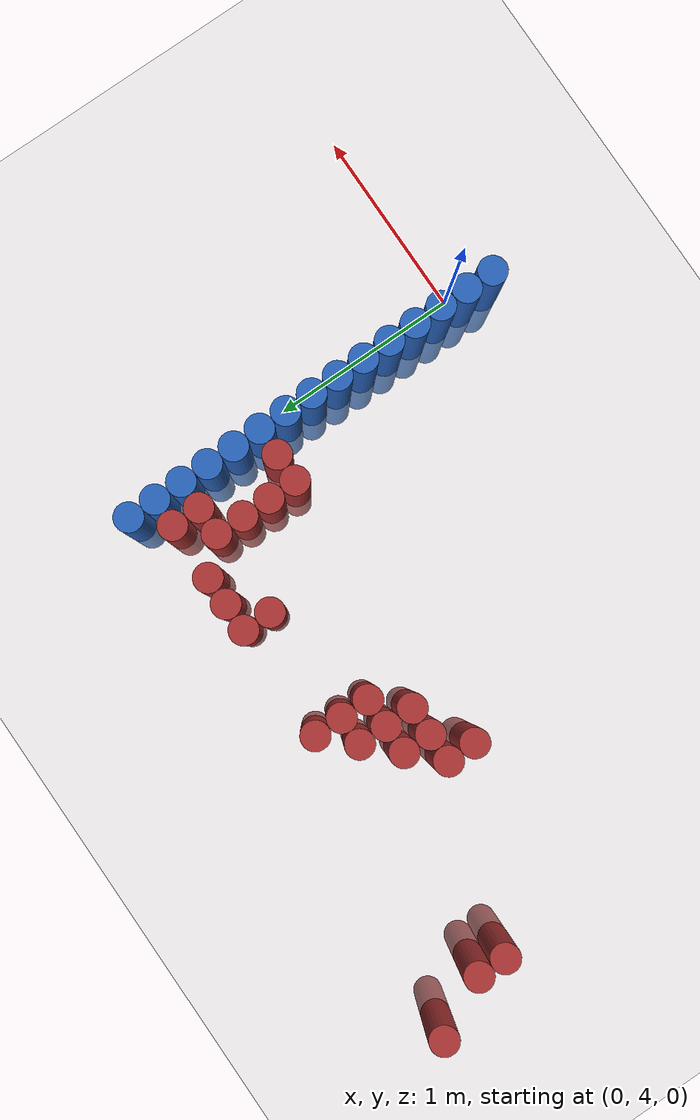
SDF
<sdf version="1.6">
 <world name="default">
  <model name="ground_plane">
   <static>1</static>
   <link name="link">
    <collision name="collision">
     <geometry><plane><normal>0 0 1</normal><size>100 100</size></plane></geometry>
     <surface><friction><ode><mu>100</mu><mu2>50</mu2></ode></friction></surface>
    </collision>
    <visual name="visual">
     <cast_shadows>0</cast_shadows>
     <geometry><plane><normal>0 0 1</normal><size>100 100</size></plane></geometry>
     <material>
      <script><uri>file://media/materials/scripts/gazebo.material</uri><name>Gazebo/Grey</name></script>
     </material>
    </visual>
   </link>
  </model>
  <model name="unit_cylinder_78">
   <static>1</static>
   <pose>-0.075000 3.825000 0.000000 0.000000 0.000000 0.000000</pose>
   <link name="link">
    <inertial>
     <mass>1</mass>
     <inertia><ixx>0.145833</ixx><ixy>0</ixy><ixz>0</ixz><iyy>0.145833</iyy><iyz>0</iyz><izz>0.125</izz></inertia>
    </inertial>
    <collision name="collision">
     <geometry><cylinder><radius>0.075000</radius><length>1</length></cylinder></geometry>
    </collision>
    <visual name="visual">
     <geometry><cylinder><radius>0.075000</radius><length>1</length></cylinder></geometry>
     <material>
      <ambient>0.152000 0.379000 0.720000 1</ambient>
      <diffuse>0.152000 0.379000 0.720000 1</diffuse>
     </material>
     <material>
      <script><name>Gazebo/Grey</name><uri>file://media/materials/scripts/gazebo.material</uri></script>
     </material>
    </visual>
    <sensor name="sensor_contact" type="contact"><contact><collision>collision</collision></contact></sensor>
   </link>
   <plugin filename="gz-sim-touchplugin-system" name="gz::sim::systems::TouchPlugin">
    <target>robot</target>
    <namespace>robot</namespace>
    <time>0.001</time>
    <enabled>true</enabled>
   </plugin>
  </model>
  <model name="unit_cylinder_80">
   <static>1</static>
   <pose>-0.075000 3.975000 0.000000 0.000000 0.000000 0.000000</pose>
   <link name="link">
    <inertial>
     <mass>1</mass>
     <inertia><ixx>0.145833</ixx><ixy>0</ixy><ixz>0</ixz><iyy>0.145833</iyy><iyz>0</iyz><izz>0.125</izz></inertia>
    </inertial>
    <collision name="collision">
     <geometry><cylinder><radius>0.075000</radius><length>1</length></cylinder></geometry>
    </collision>
    <visual name="visual">
     <geometry><cylinder><radius>0.075000</radius><length>1</length></cylinder></geometry>
     <material>
      <ambient>0.152000 0.379000 0.720000 1</ambient>
      <diffuse>0.152000 0.379000 0.720000 1</diffuse>
     </material>
     <material>
      <script><name>Gazebo/Grey</name><uri>file://media/materials/scripts/gazebo.material</uri></script>
     </material>
    </visual>
    <sensor name="sensor_contact" type="contact"><contact><collision>collision</collision></contact></sensor>
   </link>
   <plugin filename="gz-sim-touchplugin-system" name="gz::sim::systems::TouchPlugin">
    <target>robot</target>
    <namespace>robot</namespace>
    <time>0.001</time>
    <enabled>true</enabled>
   </plugin>
  </model>
  <model name="unit_cylinder_82">
   <static>1</static>
   <pose>-0.075000 4.125000 0.000000 0.000000 0.000000 0.000000</pose>
   <link name="link">
    <inertial>
     <mass>1</mass>
     <inertia><ixx>0.145833</ixx><ixy>0</ixy><ixz>0</ixz><iyy>0.145833</iyy><iyz>0</iyz><izz>0.125</izz></inertia>
    </inertial>
    <collision name="collision">
     <geometry><cylinder><radius>0.075000</radius><length>1</length></cylinder></geometry>
    </collision>
    <visual name="visual">
     <geometry><cylinder><radius>0.075000</radius><length>1</length></cylinder></geometry>
     <material>
      <ambient>0.152000 0.379000 0.720000 1</ambient>
      <diffuse>0.152000 0.379000 0.720000 1</diffuse>
     </material>
     <material>
      <script><name>Gazebo/Grey</name><uri>file://media/materials/scripts/gazebo.material</uri></script>
     </material>
    </visual>
    <sensor name="sensor_contact" type="contact"><contact><collision>collision</collision></contact></sensor>
   </link>
   <plugin filename="gz-sim-touchplugin-system" name="gz::sim::systems::TouchPlugin">
    <target>robot</target>
    <namespace>robot</namespace>
    <time>0.001</time>
    <enabled>true</enabled>
   </plugin>
  </model>
  <model name="unit_cylinder_84">
   <static>1</static>
   <pose>-0.075000 4.275000 0.000000 0.000000 0.000000 0.000000</pose>
   <link name="link">
    <inertial>
     <mass>1</mass>
     <inertia><ixx>0.145833</ixx><ixy>0</ixy><ixz>0</ixz><iyy>0.145833</iyy><iyz>0</iyz><izz>0.125</izz></inertia>
    </inertial>
    <collision name="collision">
     <geometry><cylinder><radius>0.075000</radius><length>1</length></cylinder></geometry>
    </collision>
    <visual name="visual">
     <geometry><cylinder><radius>0.075000</radius><length>1</length></cylinder></geometry>
     <material>
      <ambient>0.152000 0.379000 0.720000 1</ambient>
      <diffuse>0.152000 0.379000 0.720000 1</diffuse>
     </material>
     <material>
      <script><name>Gazebo/Grey</name><uri>file://media/materials/scripts/gazebo.material</uri></script>
     </material>
    </visual>
    <sensor name="sensor_contact" type="contact"><contact><collision>collision</collision></contact></sensor>
   </link>
   <plugin filename="gz-sim-touchplugin-system" name="gz::sim::systems::TouchPlugin">
    <target>robot</target>
    <namespace>robot</namespace>
    <time>0.001</time>
    <enabled>true</enabled>
   </plugin>
  </model>
  <model name="unit_cylinder_86">
   <static>1</static>
   <pose>-0.075000 4.425000 0.000000 0.000000 0.000000 0.000000</pose>
   <link name="link">
    <inertial>
     <mass>1</mass>
     <inertia><ixx>0.145833</ixx><ixy>0</ixy><ixz>0</ixz><iyy>0.145833</iyy><iyz>0</iyz><izz>0.125</izz></inertia>
    </inertial>
    <collision name="collision">
     <geometry><cylinder><radius>0.075000</radius><length>1</length></cylinder></geometry>
    </collision>
    <visual name="visual">
     <geometry><cylinder><radius>0.075000</radius><length>1</length></cylinder></geometry>
     <material>
      <ambient>0.152000 0.379000 0.720000 1</ambient>
      <diffuse>0.152000 0.379000 0.720000 1</diffuse>
     </material>
     <material>
      <script><name>Gazebo/Grey</name><uri>file://media/materials/scripts/gazebo.material</uri></script>
     </material>
    </visual>
    <sensor name="sensor_contact" type="contact"><contact><collision>collision</collision></contact></sensor>
   </link>
   <plugin filename="gz-sim-touchplugin-system" name="gz::sim::systems::TouchPlugin">
    <target>robot</target>
    <namespace>robot</namespace>
    <time>0.001</time>
    <enabled>true</enabled>
   </plugin>
  </model>
  <model name="unit_cylinder_88">
   <static>1</static>
   <pose>-0.075000 4.575000 0.000000 0.000000 0.000000 0.000000</pose>
   <link name="link">
    <inertial>
     <mass>1</mass>
     <inertia><ixx>0.145833</ixx><ixy>0</ixy><ixz>0</ixz><iyy>0.145833</iyy><iyz>0</iyz><izz>0.125</izz></inertia>
    </inertial>
    <collision name="collision">
     <geometry><cylinder><radius>0.075000</radius><length>1</length></cylinder></geometry>
    </collision>
    <visual name="visual">
     <geometry><cylinder><radius>0.075000</radius><length>1</length></cylinder></geometry>
     <material>
      <ambient>0.152000 0.379000 0.720000 1</ambient>
      <diffuse>0.152000 0.379000 0.720000 1</diffuse>
     </material>
     <material>
      <script><name>Gazebo/Grey</name><uri>file://media/materials/scripts/gazebo.material</uri></script>
     </material>
    </visual>
    <sensor name="sensor_contact" type="contact"><contact><collision>collision</collision></contact></sensor>
   </link>
   <plugin filename="gz-sim-touchplugin-system" name="gz::sim::systems::TouchPlugin">
    <target>robot</target>
    <namespace>robot</namespace>
    <time>0.001</time>
    <enabled>true</enabled>
   </plugin>
  </model>
  <model name="unit_cylinder_90">
   <static>1</static>
   <pose>-0.075000 4.725000 0.000000 0.000000 0.000000 0.000000</pose>
   <link name="link">
    <inertial>
     <mass>1</mass>
     <inertia><ixx>0.145833</ixx><ixy>0</ixy><ixz>0</ixz><iyy>0.145833</iyy><iyz>0</iyz><izz>0.125</izz></inertia>
    </inertial>
    <collision name="collision">
     <geometry><cylinder><radius>0.075000</radius><length>1</length></cylinder></geometry>
    </collision>
    <visual name="visual">
     <geometry><cylinder><radius>0.075000</radius><length>1</length></cylinder></geometry>
     <material>
      <ambient>0.152000 0.379000 0.720000 1</ambient>
      <diffuse>0.152000 0.379000 0.720000 1</diffuse>
     </material>
     <material>
      <script><name>Gazebo/Grey</name><uri>file://media/materials/scripts/gazebo.material</uri></script>
     </material>
    </visual>
    <sensor name="sensor_contact" type="contact"><contact><collision>collision</collision></contact></sensor>
   </link>
   <plugin filename="gz-sim-touchplugin-system" name="gz::sim::systems::TouchPlugin">
    <target>robot</target>
    <namespace>robot</namespace>
    <time>0.001</time>
    <enabled>true</enabled>
   </plugin>
  </model>
  <model name="unit_cylinder_92">
   <static>1</static>
   <pose>-0.075000 4.875000 0.000000 0.000000 0.000000 0.000000</pose>
   <link name="link">
    <inertial>
     <mass>1</mass>
     <inertia><ixx>0.145833</ixx><ixy>0</ixy><ixz>0</ixz><iyy>0.145833</iyy><iyz>0</iyz><izz>0.125</izz></inertia>
    </inertial>
    <collision name="collision">
     <geometry><cylinder><radius>0.075000</radius><length>1</length></cylinder></geometry>
    </collision>
    <visual name="visual">
     <geometry><cylinder><radius>0.075000</radius><length>1</length></cylinder></geometry>
     <material>
      <ambient>0.152000 0.379000 0.720000 1</ambient>
      <diffuse>0.152000 0.379000 0.720000 1</diffuse>
     </material>
     <material>
      <script><name>Gazebo/Grey</name><uri>file://media/materials/scripts/gazebo.material</uri></script>
     </material>
    </visual>
    <sensor name="sensor_contact" type="contact"><contact><collision>collision</collision></contact></sensor>
   </link>
   <plugin filename="gz-sim-touchplugin-system" name="gz::sim::systems::TouchPlugin">
    <target>robot</target>
    <namespace>robot</namespace>
    <time>0.001</time>
    <enabled>true</enabled>
   </plugin>
  </model>
  <model name="unit_cylinder_94">
   <static>1</static>
   <pose>-0.075000 5.025000 0.000000 0.000000 0.000000 0.000000</pose>
   <link name="link">
    <inertial>
     <mass>1</mass>
     <inertia><ixx>0.145833</ixx><ixy>0</ixy><ixz>0</ixz><iyy>0.145833</iyy><iyz>0</iyz><izz>0.125</izz></inertia>
    </inertial>
    <collision name="collision">
     <geometry><cylinder><radius>0.075000</radius><length>1</length></cylinder></geometry>
    </collision>
    <visual name="visual">
     <geometry><cylinder><radius>0.075000</radius><length>1</length></cylinder></geometry>
     <material>
      <ambient>0.152000 0.379000 0.720000 1</ambient>
      <diffuse>0.152000 0.379000 0.720000 1</diffuse>
     </material>
     <material>
      <script><name>Gazebo/Grey</name><uri>file://media/materials/scripts/gazebo.material</uri></script>
     </material>
    </visual>
    <sensor name="sensor_contact" type="contact"><contact><collision>collision</collision></contact></sensor>
   </link>
   <plugin filename="gz-sim-touchplugin-system" name="gz::sim::systems::TouchPlugin">
    <target>robot</target>
    <namespace>robot</namespace>
    <time>0.001</time>
    <enabled>true</enabled>
   </plugin>
  </model>
  <model name="unit_cylinder_225">
   <static>1</static>
   <pose>-2.925000 6.075000 0.000000 0.000000 0.000000 0.000000</pose>
   <link name="link">
    <inertial>
     <mass>1</mass>
     <inertia><ixx>0.145833</ixx><ixy>0</ixy><ixz>0</ixz><iyy>0.145833</iyy><iyz>0</iyz><izz>0.125</izz></inertia>
    </inertial>
    <collision name="collision">
     <geometry><cylinder><radius>0.075000</radius><length>1</length></cylinder></geometry>
    </collision>
    <visual name="visual">
     <geometry><cylinder><radius>0.075000</radius><length>1</length></cylinder></geometry>
     <material>
      <ambient>0.648000 0.192000 0.192000 1</ambient>
      <diffuse>0.648000 0.192000 0.192000 1</diffuse>
     </material>
     <material>
      <script><name>Gazebo/Grey</name><uri>file://media/materials/scripts/gazebo.material</uri></script>
     </material>
    </visual>
    <sensor name="sensor_contact" type="contact"><contact><collision>collision</collision></contact></sensor>
   </link>
   <plugin filename="gz-sim-touchplugin-system" name="gz::sim::systems::TouchPlugin">
    <target>robot</target>
    <namespace>robot</namespace>
    <time>0.001</time>
    <enabled>true</enabled>
   </plugin>
  </model>
  <model name="unit_cylinder_232">
   <static>1</static>
   <pose>-2.775000 5.625000 0.000000 0.000000 0.000000 0.000000</pose>
   <link name="link">
    <inertial>
     <mass>1</mass>
     <inertia><ixx>0.145833</ixx><ixy>0</ixy><ixz>0</ixz><iyy>0.145833</iyy><iyz>0</iyz><izz>0.125</izz></inertia>
    </inertial>
    <collision name="collision">
     <geometry><cylinder><radius>0.075000</radius><length>1</length></cylinder></geometry>
    </collision>
    <visual name="visual">
     <geometry><cylinder><radius>0.075000</radius><length>1</length></cylinder></geometry>
     <material>
      <ambient>0.648000 0.192000 0.192000 1</ambient>
      <diffuse>0.648000 0.192000 0.192000 1</diffuse>
     </material>
     <material>
      <script><name>Gazebo/Grey</name><uri>file://media/materials/scripts/gazebo.material</uri></script>
     </material>
    </visual>
    <sensor name="sensor_contact" type="contact"><contact><collision>collision</collision></contact></sensor>
   </link>
   <plugin filename="gz-sim-touchplugin-system" name="gz::sim::systems::TouchPlugin">
    <target>robot</target>
    <namespace>robot</namespace>
    <time>0.001</time>
    <enabled>true</enabled>
   </plugin>
  </model>
  <model name="unit_cylinder_233">
   <static>1</static>
   <pose>-2.775000 5.775000 0.000000 0.000000 0.000000 0.000000</pose>
   <link name="link">
    <inertial>
     <mass>1</mass>
     <inertia><ixx>0.145833</ixx><ixy>0</ixy><ixz>0</ixz><iyy>0.145833</iyy><iyz>0</iyz><izz>0.125</izz></inertia>
    </inertial>
    <collision name="collision">
     <geometry><cylinder><radius>0.075000</radius><length>1</length></cylinder></geometry>
    </collision>
    <visual name="visual">
     <geometry><cylinder><radius>0.075000</radius><length>1</length></cylinder></geometry>
     <material>
      <ambient>0.648000 0.192000 0.192000 1</ambient>
      <diffuse>0.648000 0.192000 0.192000 1</diffuse>
     </material>
     <material>
      <script><name>Gazebo/Grey</name><uri>file://media/materials/scripts/gazebo.material</uri></script>
     </material>
    </visual>
    <sensor name="sensor_contact" type="contact"><contact><collision>collision</collision></contact></sensor>
   </link>
   <plugin filename="gz-sim-touchplugin-system" name="gz::sim::systems::TouchPlugin">
    <target>robot</target>
    <namespace>robot</namespace>
    <time>0.001</time>
    <enabled>true</enabled>
   </plugin>
  </model>
  <model name="unit_cylinder_257">
   <static>1</static>
   <pose>-1.875000 5.175000 0.000000 0.000000 0.000000 0.000000</pose>
   <link name="link">
    <inertial>
     <mass>1</mass>
     <inertia><ixx>0.145833</ixx><ixy>0</ixy><ixz>0</ixz><iyy>0.145833</iyy><iyz>0</iyz><izz>0.125</izz></inertia>
    </inertial>
    <collision name="collision">
     <geometry><cylinder><radius>0.075000</radius><length>1</length></cylinder></geometry>
    </collision>
    <visual name="visual">
     <geometry><cylinder><radius>0.075000</radius><length>1</length></cylinder></geometry>
     <material>
      <ambient>0.648000 0.192000 0.192000 1</ambient>
      <diffuse>0.648000 0.192000 0.192000 1</diffuse>
     </material>
     <material>
      <script><name>Gazebo/Grey</name><uri>file://media/materials/scripts/gazebo.material</uri></script>
     </material>
    </visual>
    <sensor name="sensor_contact" type="contact"><contact><collision>collision</collision></contact></sensor>
   </link>
   <plugin filename="gz-sim-touchplugin-system" name="gz::sim::systems::TouchPlugin">
    <target>robot</target>
    <namespace>robot</namespace>
    <time>0.001</time>
    <enabled>true</enabled>
   </plugin>
  </model>
  <model name="unit_cylinder_258">
   <static>1</static>
   <pose>-1.875000 5.325000 0.000000 0.000000 0.000000 0.000000</pose>
   <link name="link">
    <inertial>
     <mass>1</mass>
     <inertia><ixx>0.145833</ixx><ixy>0</ixy><ixz>0</ixz><iyy>0.145833</iyy><iyz>0</iyz><izz>0.125</izz></inertia>
    </inertial>
    <collision name="collision">
     <geometry><cylinder><radius>0.075000</radius><length>1</length></cylinder></geometry>
    </collision>
    <visual name="visual">
     <geometry><cylinder><radius>0.075000</radius><length>1</length></cylinder></geometry>
     <material>
      <ambient>0.648000 0.192000 0.192000 1</ambient>
      <diffuse>0.648000 0.192000 0.192000 1</diffuse>
     </material>
     <material>
      <script><name>Gazebo/Grey</name><uri>file://media/materials/scripts/gazebo.material</uri></script>
     </material>
    </visual>
    <sensor name="sensor_contact" type="contact"><contact><collision>collision</collision></contact></sensor>
   </link>
   <plugin filename="gz-sim-touchplugin-system" name="gz::sim::systems::TouchPlugin">
    <target>robot</target>
    <namespace>robot</namespace>
    <time>0.001</time>
    <enabled>true</enabled>
   </plugin>
  </model>
  <model name="unit_cylinder_260">
   <static>1</static>
   <pose>-1.725000 5.325000 0.000000 0.000000 0.000000 0.000000</pose>
   <link name="link">
    <inertial>
     <mass>1</mass>
     <inertia><ixx>0.145833</ixx><ixy>0</ixy><ixz>0</ixz><iyy>0.145833</iyy><iyz>0</iyz><izz>0.125</izz></inertia>
    </inertial>
    <collision name="collision">
     <geometry><cylinder><radius>0.075000</radius><length>1</length></cylinder></geometry>
    </collision>
    <visual name="visual">
     <geometry><cylinder><radius>0.075000</radius><length>1</length></cylinder></geometry>
     <material>
      <ambient>0.648000 0.192000 0.192000 1</ambient>
      <diffuse>0.648000 0.192000 0.192000 1</diffuse>
     </material>
     <material>
      <script><name>Gazebo/Grey</name><uri>file://media/materials/scripts/gazebo.material</uri></script>
     </material>
    </visual>
    <sensor name="sensor_contact" type="contact"><contact><collision>collision</collision></contact></sensor>
   </link>
   <plugin filename="gz-sim-touchplugin-system" name="gz::sim::systems::TouchPlugin">
    <target>robot</target>
    <namespace>robot</namespace>
    <time>0.001</time>
    <enabled>true</enabled>
   </plugin>
  </model>
  <model name="unit_cylinder_261">
   <static>1</static>
   <pose>-1.725000 5.475000 0.000000 0.000000 0.000000 0.000000</pose>
   <link name="link">
    <inertial>
     <mass>1</mass>
     <inertia><ixx>0.145833</ixx><ixy>0</ixy><ixz>0</ixz><iyy>0.145833</iyy><iyz>0</iyz><izz>0.125</izz></inertia>
    </inertial>
    <collision name="collision">
     <geometry><cylinder><radius>0.075000</radius><length>1</length></cylinder></geometry>
    </collision>
    <visual name="visual">
     <geometry><cylinder><radius>0.075000</radius><length>1</length></cylinder></geometry>
     <material>
      <ambient>0.648000 0.192000 0.192000 1</ambient>
      <diffuse>0.648000 0.192000 0.192000 1</diffuse>
     </material>
     <material>
      <script><name>Gazebo/Grey</name><uri>file://media/materials/scripts/gazebo.material</uri></script>
     </material>
    </visual>
    <sensor name="sensor_contact" type="contact"><contact><collision>collision</collision></contact></sensor>
   </link>
   <plugin filename="gz-sim-touchplugin-system" name="gz::sim::systems::TouchPlugin">
    <target>robot</target>
    <namespace>robot</namespace>
    <time>0.001</time>
    <enabled>true</enabled>
   </plugin>
  </model>
  <model name="unit_cylinder_262">
   <static>1</static>
   <pose>-1.575000 5.325000 0.000000 0.000000 0.000000 0.000000</pose>
   <link name="link">
    <inertial>
     <mass>1</mass>
     <inertia><ixx>0.145833</ixx><ixy>0</ixy><ixz>0</ixz><iyy>0.145833</iyy><iyz>0</iyz><izz>0.125</izz></inertia>
    </inertial>
    <collision name="collision">
     <geometry><cylinder><radius>0.075000</radius><length>1</length></cylinder></geometry>
    </collision>
    <visual name="visual">
     <geometry><cylinder><radius>0.075000</radius><length>1</length></cylinder></geometry>
     <material>
      <ambient>0.648000 0.192000 0.192000 1</ambient>
      <diffuse>0.648000 0.192000 0.192000 1</diffuse>
     </material>
     <material>
      <script><name>Gazebo/Grey</name><uri>file://media/materials/scripts/gazebo.material</uri></script>
     </material>
    </visual>
    <sensor name="sensor_contact" type="contact"><contact><collision>collision</collision></contact></sensor>
   </link>
   <plugin filename="gz-sim-touchplugin-system" name="gz::sim::systems::TouchPlugin">
    <target>robot</target>
    <namespace>robot</namespace>
    <time>0.001</time>
    <enabled>true</enabled>
   </plugin>
  </model>
  <model name="unit_cylinder_263">
   <static>1</static>
   <pose>-1.575000 5.475000 0.000000 0.000000 0.000000 0.000000</pose>
   <link name="link">
    <inertial>
     <mass>1</mass>
     <inertia><ixx>0.145833</ixx><ixy>0</ixy><ixz>0</ixz><iyy>0.145833</iyy><iyz>0</iyz><izz>0.125</izz></inertia>
    </inertial>
    <collision name="collision">
     <geometry><cylinder><radius>0.075000</radius><length>1</length></cylinder></geometry>
    </collision>
    <visual name="visual">
     <geometry><cylinder><radius>0.075000</radius><length>1</length></cylinder></geometry>
     <material>
      <ambient>0.648000 0.192000 0.192000 1</ambient>
      <diffuse>0.648000 0.192000 0.192000 1</diffuse>
     </material>
     <material>
      <script><name>Gazebo/Grey</name><uri>file://media/materials/scripts/gazebo.material</uri></script>
     </material>
    </visual>
    <sensor name="sensor_contact" type="contact"><contact><collision>collision</collision></contact></sensor>
   </link>
   <plugin filename="gz-sim-touchplugin-system" name="gz::sim::systems::TouchPlugin">
    <target>robot</target>
    <namespace>robot</namespace>
    <time>0.001</time>
    <enabled>true</enabled>
   </plugin>
  </model>
  <model name="unit_cylinder_264">
   <static>1</static>
   <pose>-1.575000 5.625000 0.000000 0.000000 0.000000 0.000000</pose>
   <link name="link">
    <inertial>
     <mass>1</mass>
     <inertia><ixx>0.145833</ixx><ixy>0</ixy><ixz>0</ixz><iyy>0.145833</iyy><iyz>0</iyz><izz>0.125</izz></inertia>
    </inertial>
    <collision name="collision">
     <geometry><cylinder><radius>0.075000</radius><length>1</length></cylinder></geometry>
    </collision>
    <visual name="visual">
     <geometry><cylinder><radius>0.075000</radius><length>1</length></cylinder></geometry>
     <material>
      <ambient>0.648000 0.192000 0.192000 1</ambient>
      <diffuse>0.648000 0.192000 0.192000 1</diffuse>
     </material>
     <material>
      <script><name>Gazebo/Grey</name><uri>file://media/materials/scripts/gazebo.material</uri></script>
     </material>
    </visual>
    <sensor name="sensor_contact" type="contact"><contact><collision>collision</collision></contact></sensor>
   </link>
   <plugin filename="gz-sim-touchplugin-system" name="gz::sim::systems::TouchPlugin">
    <target>robot</target>
    <namespace>robot</namespace>
    <time>0.001</time>
    <enabled>true</enabled>
   </plugin>
  </model>
  <model name="unit_cylinder_265">
   <static>1</static>
   <pose>-1.425000 5.475000 0.000000 0.000000 0.000000 0.000000</pose>
   <link name="link">
    <inertial>
     <mass>1</mass>
     <inertia><ixx>0.145833</ixx><ixy>0</ixy><ixz>0</ixz><iyy>0.145833</iyy><iyz>0</iyz><izz>0.125</izz></inertia>
    </inertial>
    <collision name="collision">
     <geometry><cylinder><radius>0.075000</radius><length>1</length></cylinder></geometry>
    </collision>
    <visual name="visual">
     <geometry><cylinder><radius>0.075000</radius><length>1</length></cylinder></geometry>
     <material>
      <ambient>0.648000 0.192000 0.192000 1</ambient>
      <diffuse>0.648000 0.192000 0.192000 1</diffuse>
     </material>
     <material>
      <script><name>Gazebo/Grey</name><uri>file://media/materials/scripts/gazebo.material</uri></script>
     </material>
    </visual>
    <sensor name="sensor_contact" type="contact"><contact><collision>collision</collision></contact></sensor>
   </link>
   <plugin filename="gz-sim-touchplugin-system" name="gz::sim::systems::TouchPlugin">
    <target>robot</target>
    <namespace>robot</namespace>
    <time>0.001</time>
    <enabled>true</enabled>
   </plugin>
  </model>
  <model name="unit_cylinder_266">
   <static>1</static>
   <pose>-1.425000 5.625000 0.000000 0.000000 0.000000 0.000000</pose>
   <link name="link">
    <inertial>
     <mass>1</mass>
     <inertia><ixx>0.145833</ixx><ixy>0</ixy><ixz>0</ixz><iyy>0.145833</iyy><iyz>0</iyz><izz>0.125</izz></inertia>
    </inertial>
    <collision name="collision">
     <geometry><cylinder><radius>0.075000</radius><length>1</length></cylinder></geometry>
    </collision>
    <visual name="visual">
     <geometry><cylinder><radius>0.075000</radius><length>1</length></cylinder></geometry>
     <material>
      <ambient>0.648000 0.192000 0.192000 1</ambient>
      <diffuse>0.648000 0.192000 0.192000 1</diffuse>
     </material>
     <material>
      <script><name>Gazebo/Grey</name><uri>file://media/materials/scripts/gazebo.material</uri></script>
     </material>
    </visual>
    <sensor name="sensor_contact" type="contact"><contact><collision>collision</collision></contact></sensor>
   </link>
   <plugin filename="gz-sim-touchplugin-system" name="gz::sim::systems::TouchPlugin">
    <target>robot</target>
    <namespace>robot</namespace>
    <time>0.001</time>
    <enabled>true</enabled>
   </plugin>
  </model>
  <model name="unit_cylinder_267">
   <static>1</static>
   <pose>-1.425000 5.775000 0.000000 0.000000 0.000000 0.000000</pose>
   <link name="link">
    <inertial>
     <mass>1</mass>
     <inertia><ixx>0.145833</ixx><ixy>0</ixy><ixz>0</ixz><iyy>0.145833</iyy><iyz>0</iyz><izz>0.125</izz></inertia>
    </inertial>
    <collision name="collision">
     <geometry><cylinder><radius>0.075000</radius><length>1</length></cylinder></geometry>
    </collision>
    <visual name="visual">
     <geometry><cylinder><radius>0.075000</radius><length>1</length></cylinder></geometry>
     <material>
      <ambient>0.648000 0.192000 0.192000 1</ambient>
      <diffuse>0.648000 0.192000 0.192000 1</diffuse>
     </material>
     <material>
      <script><name>Gazebo/Grey</name><uri>file://media/materials/scripts/gazebo.material</uri></script>
     </material>
    </visual>
    <sensor name="sensor_contact" type="contact"><contact><collision>collision</collision></contact></sensor>
   </link>
   <plugin filename="gz-sim-touchplugin-system" name="gz::sim::systems::TouchPlugin">
    <target>robot</target>
    <namespace>robot</namespace>
    <time>0.001</time>
    <enabled>true</enabled>
   </plugin>
  </model>
  <model name="unit_cylinder_278">
   <static>1</static>
   <pose>-0.825000 5.625000 0.000000 0.000000 0.000000 0.000000</pose>
   <link name="link">
    <inertial>
     <mass>1</mass>
     <inertia><ixx>0.145833</ixx><ixy>0</ixy><ixz>0</ixz><iyy>0.145833</iyy><iyz>0</iyz><izz>0.125</izz></inertia>
    </inertial>
    <collision name="collision">
     <geometry><cylinder><radius>0.075000</radius><length>1</length></cylinder></geometry>
    </collision>
    <visual name="visual">
     <geometry><cylinder><radius>0.075000</radius><length>1</length></cylinder></geometry>
     <material>
      <ambient>0.648000 0.192000 0.192000 1</ambient>
      <diffuse>0.648000 0.192000 0.192000 1</diffuse>
     </material>
     <material>
      <script><name>Gazebo/Grey</name><uri>file://media/materials/scripts/gazebo.material</uri></script>
     </material>
    </visual>
    <sensor name="sensor_contact" type="contact"><contact><collision>collision</collision></contact></sensor>
   </link>
   <plugin filename="gz-sim-touchplugin-system" name="gz::sim::systems::TouchPlugin">
    <target>robot</target>
    <namespace>robot</namespace>
    <time>0.001</time>
    <enabled>true</enabled>
   </plugin>
  </model>
  <model name="unit_cylinder_279">
   <static>1</static>
   <pose>-0.825000 5.775000 0.000000 0.000000 0.000000 0.000000</pose>
   <link name="link">
    <inertial>
     <mass>1</mass>
     <inertia><ixx>0.145833</ixx><ixy>0</ixy><ixz>0</ixz><iyy>0.145833</iyy><iyz>0</iyz><izz>0.125</izz></inertia>
    </inertial>
    <collision name="collision">
     <geometry><cylinder><radius>0.075000</radius><length>1</length></cylinder></geometry>
    </collision>
    <visual name="visual">
     <geometry><cylinder><radius>0.075000</radius><length>1</length></cylinder></geometry>
     <material>
      <ambient>0.648000 0.192000 0.192000 1</ambient>
      <diffuse>0.648000 0.192000 0.192000 1</diffuse>
     </material>
     <material>
      <script><name>Gazebo/Grey</name><uri>file://media/materials/scripts/gazebo.material</uri></script>
     </material>
    </visual>
    <sensor name="sensor_contact" type="contact"><contact><collision>collision</collision></contact></sensor>
   </link>
   <plugin filename="gz-sim-touchplugin-system" name="gz::sim::systems::TouchPlugin">
    <target>robot</target>
    <namespace>robot</namespace>
    <time>0.001</time>
    <enabled>true</enabled>
   </plugin>
  </model>
  <model name="unit_cylinder_284">
   <static>1</static>
   <pose>-0.675000 5.775000 0.000000 0.000000 0.000000 0.000000</pose>
   <link name="link">
    <inertial>
     <mass>1</mass>
     <inertia><ixx>0.145833</ixx><ixy>0</ixy><ixz>0</ixz><iyy>0.145833</iyy><iyz>0</iyz><izz>0.125</izz></inertia>
    </inertial>
    <collision name="collision">
     <geometry><cylinder><radius>0.075000</radius><length>1</length></cylinder></geometry>
    </collision>
    <visual name="visual">
     <geometry><cylinder><radius>0.075000</radius><length>1</length></cylinder></geometry>
     <material>
      <ambient>0.648000 0.192000 0.192000 1</ambient>
      <diffuse>0.648000 0.192000 0.192000 1</diffuse>
     </material>
     <material>
      <script><name>Gazebo/Grey</name><uri>file://media/materials/scripts/gazebo.material</uri></script>
     </material>
    </visual>
    <sensor name="sensor_contact" type="contact"><contact><collision>collision</collision></contact></sensor>
   </link>
   <plugin filename="gz-sim-touchplugin-system" name="gz::sim::systems::TouchPlugin">
    <target>robot</target>
    <namespace>robot</namespace>
    <time>0.001</time>
    <enabled>true</enabled>
   </plugin>
  </model>
  <model name="unit_cylinder_287">
   <static>1</static>
   <pose>-0.525000 5.775000 0.000000 0.000000 0.000000 0.000000</pose>
   <link name="link">
    <inertial>
     <mass>1</mass>
     <inertia><ixx>0.145833</ixx><ixy>0</ixy><ixz>0</ixz><iyy>0.145833</iyy><iyz>0</iyz><izz>0.125</izz></inertia>
    </inertial>
    <collision name="collision">
     <geometry><cylinder><radius>0.075000</radius><length>1</length></cylinder></geometry>
    </collision>
    <visual name="visual">
     <geometry><cylinder><radius>0.075000</radius><length>1</length></cylinder></geometry>
     <material>
      <ambient>0.648000 0.192000 0.192000 1</ambient>
      <diffuse>0.648000 0.192000 0.192000 1</diffuse>
     </material>
     <material>
      <script><name>Gazebo/Grey</name><uri>file://media/materials/scripts/gazebo.material</uri></script>
     </material>
    </visual>
    <sensor name="sensor_contact" type="contact"><contact><collision>collision</collision></contact></sensor>
   </link>
   <plugin filename="gz-sim-touchplugin-system" name="gz::sim::systems::TouchPlugin">
    <target>robot</target>
    <namespace>robot</namespace>
    <time>0.001</time>
    <enabled>true</enabled>
   </plugin>
  </model>
  <model name="unit_cylinder_291">
   <static>1</static>
   <pose>-0.375000 5.175000 0.000000 0.000000 0.000000 0.000000</pose>
   <link name="link">
    <inertial>
     <mass>1</mass>
     <inertia><ixx>0.145833</ixx><ixy>0</ixy><ixz>0</ixz><iyy>0.145833</iyy><iyz>0</iyz><izz>0.125</izz></inertia>
    </inertial>
    <collision name="collision">
     <geometry><cylinder><radius>0.075000</radius><length>1</length></cylinder></geometry>
    </collision>
    <visual name="visual">
     <geometry><cylinder><radius>0.075000</radius><length>1</length></cylinder></geometry>
     <material>
      <ambient>0.648000 0.192000 0.192000 1</ambient>
      <diffuse>0.648000 0.192000 0.192000 1</diffuse>
     </material>
     <material>
      <script><name>Gazebo/Grey</name><uri>file://media/materials/scripts/gazebo.material</uri></script>
     </material>
    </visual>
    <sensor name="sensor_contact" type="contact"><contact><collision>collision</collision></contact></sensor>
   </link>
   <plugin filename="gz-sim-touchplugin-system" name="gz::sim::systems::TouchPlugin">
    <target>robot</target>
    <namespace>robot</namespace>
    <time>0.001</time>
    <enabled>true</enabled>
   </plugin>
  </model>
  <model name="unit_cylinder_292">
   <static>1</static>
   <pose>-0.375000 5.325000 0.000000 0.000000 0.000000 0.000000</pose>
   <link name="link">
    <inertial>
     <mass>1</mass>
     <inertia><ixx>0.145833</ixx><ixy>0</ixy><ixz>0</ixz><iyy>0.145833</iyy><iyz>0</iyz><izz>0.125</izz></inertia>
    </inertial>
    <collision name="collision">
     <geometry><cylinder><radius>0.075000</radius><length>1</length></cylinder></geometry>
    </collision>
    <visual name="visual">
     <geometry><cylinder><radius>0.075000</radius><length>1</length></cylinder></geometry>
     <material>
      <ambient>0.648000 0.192000 0.192000 1</ambient>
      <diffuse>0.648000 0.192000 0.192000 1</diffuse>
     </material>
     <material>
      <script><name>Gazebo/Grey</name><uri>file://media/materials/scripts/gazebo.material</uri></script>
     </material>
    </visual>
    <sensor name="sensor_contact" type="contact"><contact><collision>collision</collision></contact></sensor>
   </link>
   <plugin filename="gz-sim-touchplugin-system" name="gz::sim::systems::TouchPlugin">
    <target>robot</target>
    <namespace>robot</namespace>
    <time>0.001</time>
    <enabled>true</enabled>
   </plugin>
  </model>
  <model name="unit_cylinder_293">
   <static>1</static>
   <pose>-0.375000 5.475000 0.000000 0.000000 0.000000 0.000000</pose>
   <link name="link">
    <inertial>
     <mass>1</mass>
     <inertia><ixx>0.145833</ixx><ixy>0</ixy><ixz>0</ixz><iyy>0.145833</iyy><iyz>0</iyz><izz>0.125</izz></inertia>
    </inertial>
    <collision name="collision">
     <geometry><cylinder><radius>0.075000</radius><length>1</length></cylinder></geometry>
    </collision>
    <visual name="visual">
     <geometry><cylinder><radius>0.075000</radius><length>1</length></cylinder></geometry>
     <material>
      <ambient>0.648000 0.192000 0.192000 1</ambient>
      <diffuse>0.648000 0.192000 0.192000 1</diffuse>
     </material>
     <material>
      <script><name>Gazebo/Grey</name><uri>file://media/materials/scripts/gazebo.material</uri></script>
     </material>
    </visual>
    <sensor name="sensor_contact" type="contact"><contact><collision>collision</collision></contact></sensor>
   </link>
   <plugin filename="gz-sim-touchplugin-system" name="gz::sim::systems::TouchPlugin">
    <target>robot</target>
    <namespace>robot</namespace>
    <time>0.001</time>
    <enabled>true</enabled>
   </plugin>
  </model>
  <model name="unit_cylinder_294">
   <static>1</static>
   <pose>-0.375000 5.625000 0.000000 0.000000 0.000000 0.000000</pose>
   <link name="link">
    <inertial>
     <mass>1</mass>
     <inertia><ixx>0.145833</ixx><ixy>0</ixy><ixz>0</ixz><iyy>0.145833</iyy><iyz>0</iyz><izz>0.125</izz></inertia>
    </inertial>
    <collision name="collision">
     <geometry><cylinder><radius>0.075000</radius><length>1</length></cylinder></geometry>
    </collision>
    <visual name="visual">
     <geometry><cylinder><radius>0.075000</radius><length>1</length></cylinder></geometry>
     <material>
      <ambient>0.648000 0.192000 0.192000 1</ambient>
      <diffuse>0.648000 0.192000 0.192000 1</diffuse>
     </material>
     <material>
      <script><name>Gazebo/Grey</name><uri>file://media/materials/scripts/gazebo.material</uri></script>
     </material>
    </visual>
    <sensor name="sensor_contact" type="contact"><contact><collision>collision</collision></contact></sensor>
   </link>
   <plugin filename="gz-sim-touchplugin-system" name="gz::sim::systems::TouchPlugin">
    <target>robot</target>
    <namespace>robot</namespace>
    <time>0.001</time>
    <enabled>true</enabled>
   </plugin>
  </model>
  <model name="unit_cylinder_304">
   <static>1</static>
   <pose>-0.225000 5.175000 0.000000 0.000000 0.000000 0.000000</pose>
   <link name="link">
    <inertial>
     <mass>1</mass>
     <inertia><ixx>0.145833</ixx><ixy>0</ixy><ixz>0</ixz><iyy>0.145833</iyy><iyz>0</iyz><izz>0.125</izz></inertia>
    </inertial>
    <collision name="collision">
     <geometry><cylinder><radius>0.075000</radius><length>1</length></cylinder></geometry>
    </collision>
    <visual name="visual">
     <geometry><cylinder><radius>0.075000</radius><length>1</length></cylinder></geometry>
     <material>
      <ambient>0.648000 0.192000 0.192000 1</ambient>
      <diffuse>0.648000 0.192000 0.192000 1</diffuse>
     </material>
     <material>
      <script><name>Gazebo/Grey</name><uri>file://media/materials/scripts/gazebo.material</uri></script>
     </material>
    </visual>
    <sensor name="sensor_contact" type="contact"><contact><collision>collision</collision></contact></sensor>
   </link>
   <plugin filename="gz-sim-touchplugin-system" name="gz::sim::systems::TouchPlugin">
    <target>robot</target>
    <namespace>robot</namespace>
    <time>0.001</time>
    <enabled>true</enabled>
   </plugin>
  </model>
  <model name="unit_cylinder_305">
   <static>1</static>
   <pose>-0.225000 5.625000 0.000000 0.000000 0.000000 0.000000</pose>
   <link name="link">
    <inertial>
     <mass>1</mass>
     <inertia><ixx>0.145833</ixx><ixy>0</ixy><ixz>0</ixz><iyy>0.145833</iyy><iyz>0</iyz><izz>0.125</izz></inertia>
    </inertial>
    <collision name="collision">
     <geometry><cylinder><radius>0.075000</radius><length>1</length></cylinder></geometry>
    </collision>
    <visual name="visual">
     <geometry><cylinder><radius>0.075000</radius><length>1</length></cylinder></geometry>
     <material>
      <ambient>0.648000 0.192000 0.192000 1</ambient>
      <diffuse>0.648000 0.192000 0.192000 1</diffuse>
     </material>
     <material>
      <script><name>Gazebo/Grey</name><uri>file://media/materials/scripts/gazebo.material</uri></script>
     </material>
    </visual>
    <sensor name="sensor_contact" type="contact"><contact><collision>collision</collision></contact></sensor>
   </link>
   <plugin filename="gz-sim-touchplugin-system" name="gz::sim::systems::TouchPlugin">
    <target>robot</target>
    <namespace>robot</namespace>
    <time>0.001</time>
    <enabled>true</enabled>
   </plugin>
  </model>
  <model name="unit_cylinder_306">
   <static>1</static>
   <pose>-0.225000 5.775000 0.000000 0.000000 0.000000 0.000000</pose>
   <link name="link">
    <inertial>
     <mass>1</mass>
     <inertia><ixx>0.145833</ixx><ixy>0</ixy><ixz>0</ixz><iyy>0.145833</iyy><iyz>0</iyz><izz>0.125</izz></inertia>
    </inertial>
    <collision name="collision">
     <geometry><cylinder><radius>0.075000</radius><length>1</length></cylinder></geometry>
    </collision>
    <visual name="visual">
     <geometry><cylinder><radius>0.075000</radius><length>1</length></cylinder></geometry>
     <material>
      <ambient>0.648000 0.192000 0.192000 1</ambient>
      <diffuse>0.648000 0.192000 0.192000 1</diffuse>
     </material>
     <material>
      <script><name>Gazebo/Grey</name><uri>file://media/materials/scripts/gazebo.material</uri></script>
     </material>
    </visual>
    <sensor name="sensor_contact" type="contact"><contact><collision>collision</collision></contact></sensor>
   </link>
   <plugin filename="gz-sim-touchplugin-system" name="gz::sim::systems::TouchPlugin">
    <target>robot</target>
    <namespace>robot</namespace>
    <time>0.001</time>
    <enabled>true</enabled>
   </plugin>
  </model>
  <model name="unit_cylinder_321">
   <static>1</static>
   <pose>-0.075000 5.175000 0.000000 0.000000 0.000000 0.000000</pose>
   <link name="link">
    <inertial>
     <mass>1</mass>
     <inertia><ixx>0.145833</ixx><ixy>0</ixy><ixz>0</ixz><iyy>0.145833</iyy><iyz>0</iyz><izz>0.125</izz></inertia>
    </inertial>
    <collision name="collision">
     <geometry><cylinder><radius>0.075000</radius><length>1</length></cylinder></geometry>
    </collision>
    <visual name="visual">
     <geometry><cylinder><radius>0.075000</radius><length>1</length></cylinder></geometry>
     <material>
      <ambient>0.152000 0.379000 0.720000 1</ambient>
      <diffuse>0.152000 0.379000 0.720000 1</diffuse>
     </material>
     <material>
      <script><name>Gazebo/Grey</name><uri>file://media/materials/scripts/gazebo.material</uri></script>
     </material>
    </visual>
    <sensor name="sensor_contact" type="contact"><contact><collision>collision</collision></contact></sensor>
   </link>
   <plugin filename="gz-sim-touchplugin-system" name="gz::sim::systems::TouchPlugin">
    <target>robot</target>
    <namespace>robot</namespace>
    <time>0.001</time>
    <enabled>true</enabled>
   </plugin>
  </model>
  <model name="unit_cylinder_322">
   <static>1</static>
   <pose>-0.075000 5.325000 0.000000 0.000000 0.000000 0.000000</pose>
   <link name="link">
    <inertial>
     <mass>1</mass>
     <inertia><ixx>0.145833</ixx><ixy>0</ixy><ixz>0</ixz><iyy>0.145833</iyy><iyz>0</iyz><izz>0.125</izz></inertia>
    </inertial>
    <collision name="collision">
     <geometry><cylinder><radius>0.075000</radius><length>1</length></cylinder></geometry>
    </collision>
    <visual name="visual">
     <geometry><cylinder><radius>0.075000</radius><length>1</length></cylinder></geometry>
     <material>
      <ambient>0.152000 0.379000 0.720000 1</ambient>
      <diffuse>0.152000 0.379000 0.720000 1</diffuse>
     </material>
     <material>
      <script><name>Gazebo/Grey</name><uri>file://media/materials/scripts/gazebo.material</uri></script>
     </material>
    </visual>
    <sensor name="sensor_contact" type="contact"><contact><collision>collision</collision></contact></sensor>
   </link>
   <plugin filename="gz-sim-touchplugin-system" name="gz::sim::systems::TouchPlugin">
    <target>robot</target>
    <namespace>robot</namespace>
    <time>0.001</time>
    <enabled>true</enabled>
   </plugin>
  </model>
  <model name="unit_cylinder_323">
   <static>1</static>
   <pose>-0.075000 5.475000 0.000000 0.000000 0.000000 0.000000</pose>
   <link name="link">
    <inertial>
     <mass>1</mass>
     <inertia><ixx>0.145833</ixx><ixy>0</ixy><ixz>0</ixz><iyy>0.145833</iyy><iyz>0</iyz><izz>0.125</izz></inertia>
    </inertial>
    <collision name="collision">
     <geometry><cylinder><radius>0.075000</radius><length>1</length></cylinder></geometry>
    </collision>
    <visual name="visual">
     <geometry><cylinder><radius>0.075000</radius><length>1</length></cylinder></geometry>
     <material>
      <ambient>0.152000 0.379000 0.720000 1</ambient>
      <diffuse>0.152000 0.379000 0.720000 1</diffuse>
     </material>
     <material>
      <script><name>Gazebo/Grey</name><uri>file://media/materials/scripts/gazebo.material</uri></script>
     </material>
    </visual>
    <sensor name="sensor_contact" type="contact"><contact><collision>collision</collision></contact></sensor>
   </link>
   <plugin filename="gz-sim-touchplugin-system" name="gz::sim::systems::TouchPlugin">
    <target>robot</target>
    <namespace>robot</namespace>
    <time>0.001</time>
    <enabled>true</enabled>
   </plugin>
  </model>
  <model name="unit_cylinder_324">
   <static>1</static>
   <pose>-0.075000 5.625000 0.000000 0.000000 0.000000 0.000000</pose>
   <link name="link">
    <inertial>
     <mass>1</mass>
     <inertia><ixx>0.145833</ixx><ixy>0</ixy><ixz>0</ixz><iyy>0.145833</iyy><iyz>0</iyz><izz>0.125</izz></inertia>
    </inertial>
    <collision name="collision">
     <geometry><cylinder><radius>0.075000</radius><length>1</length></cylinder></geometry>
    </collision>
    <visual name="visual">
     <geometry><cylinder><radius>0.075000</radius><length>1</length></cylinder></geometry>
     <material>
      <ambient>0.152000 0.379000 0.720000 1</ambient>
      <diffuse>0.152000 0.379000 0.720000 1</diffuse>
     </material>
     <material>
      <script><name>Gazebo/Grey</name><uri>file://media/materials/scripts/gazebo.material</uri></script>
     </material>
    </visual>
    <sensor name="sensor_contact" type="contact"><contact><collision>collision</collision></contact></sensor>
   </link>
   <plugin filename="gz-sim-touchplugin-system" name="gz::sim::systems::TouchPlugin">
    <target>robot</target>
    <namespace>robot</namespace>
    <time>0.001</time>
    <enabled>true</enabled>
   </plugin>
  </model>
  <model name="unit_cylinder_325">
   <static>1</static>
   <pose>-0.075000 5.775000 0.000000 0.000000 0.000000 0.000000</pose>
   <link name="link">
    <inertial>
     <mass>1</mass>
     <inertia><ixx>0.145833</ixx><ixy>0</ixy><ixz>0</ixz><iyy>0.145833</iyy><iyz>0</iyz><izz>0.125</izz></inertia>
    </inertial>
    <collision name="collision">
     <geometry><cylinder><radius>0.075000</radius><length>1</length></cylinder></geometry>
    </collision>
    <visual name="visual">
     <geometry><cylinder><radius>0.075000</radius><length>1</length></cylinder></geometry>
     <material>
      <ambient>0.152000 0.379000 0.720000 1</ambient>
      <diffuse>0.152000 0.379000 0.720000 1</diffuse>
     </material>
     <material>
      <script><name>Gazebo/Grey</name><uri>file://media/materials/scripts/gazebo.material</uri></script>
     </material>
    </visual>
    <sensor name="sensor_contact" type="contact"><contact><collision>collision</collision></contact></sensor>
   </link>
   <plugin filename="gz-sim-touchplugin-system" name="gz::sim::systems::TouchPlugin">
    <target>robot</target>
    <namespace>robot</namespace>
    <time>0.001</time>
    <enabled>true</enabled>
   </plugin>
  </model>
  <model name="unit_cylinder_326">
   <static>1</static>
   <pose>-0.075000 5.925000 0.000000 0.000000 0.000000 0.000000</pose>
   <link name="link">
    <inertial>
     <mass>1</mass>
     <inertia><ixx>0.145833</ixx><ixy>0</ixy><ixz>0</ixz><iyy>0.145833</iyy><iyz>0</iyz><izz>0.125</izz></inertia>
    </inertial>
    <collision name="collision">
     <geometry><cylinder><radius>0.075000</radius><length>1</length></cylinder></geometry>
    </collision>
    <visual name="visual">
     <geometry><cylinder><radius>0.075000</radius><length>1</length></cylinder></geometry>
     <material>
      <ambient>0.152000 0.379000 0.720000 1</ambient>
      <diffuse>0.152000 0.379000 0.720000 1</diffuse>
     </material>
     <material>
      <script><name>Gazebo/Grey</name><uri>file://media/materials/scripts/gazebo.material</uri></script>
     </material>
    </visual>
    <sensor name="sensor_contact" type="contact"><contact><collision>collision</collision></contact></sensor>
   </link>
   <plugin filename="gz-sim-touchplugin-system" name="gz::sim::systems::TouchPlugin">
    <target>robot</target>
    <namespace>robot</namespace>
    <time>0.001</time>
    <enabled>true</enabled>
   </plugin>
  </model>
 </world>
</sdf>
